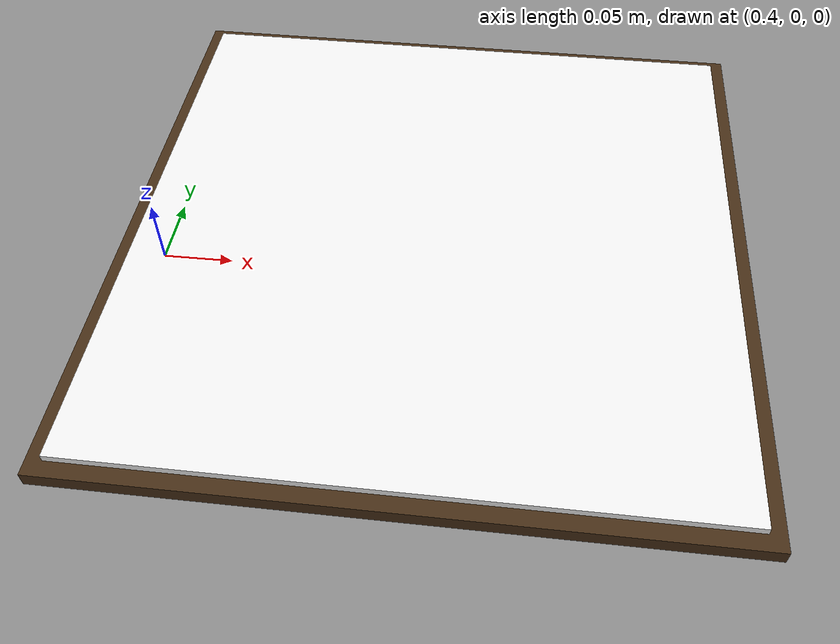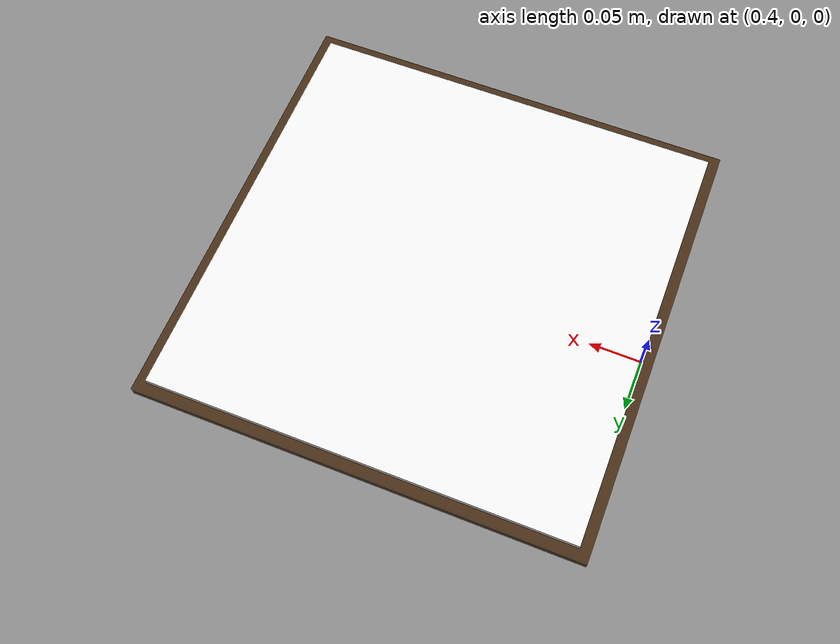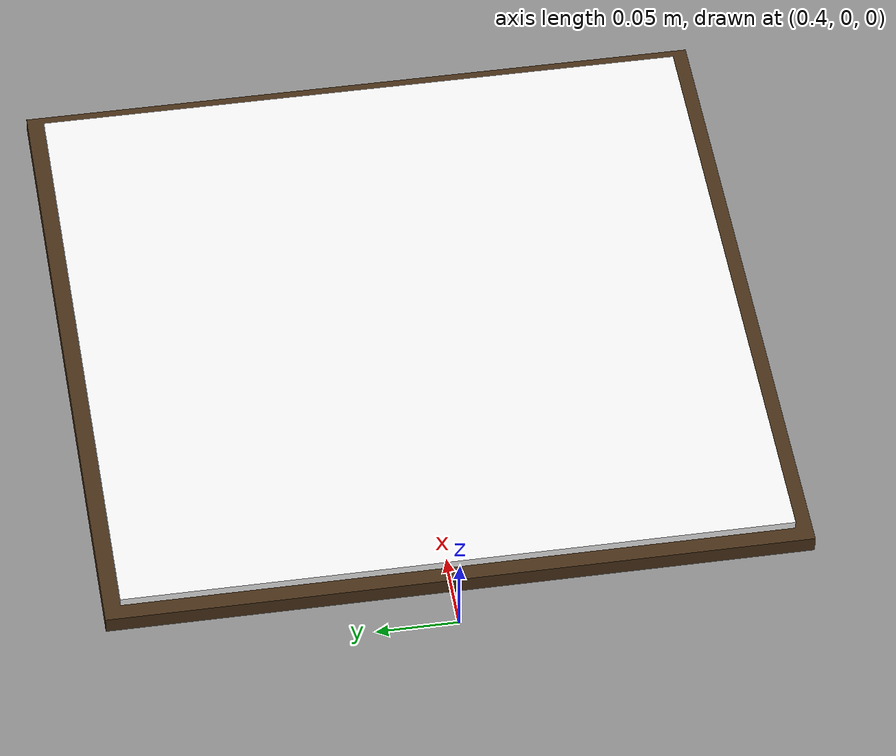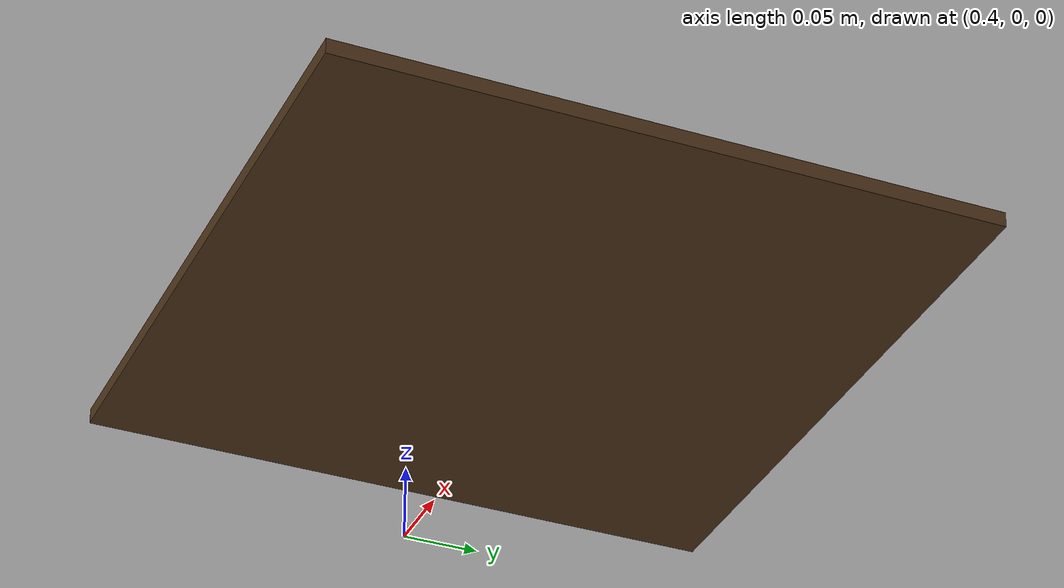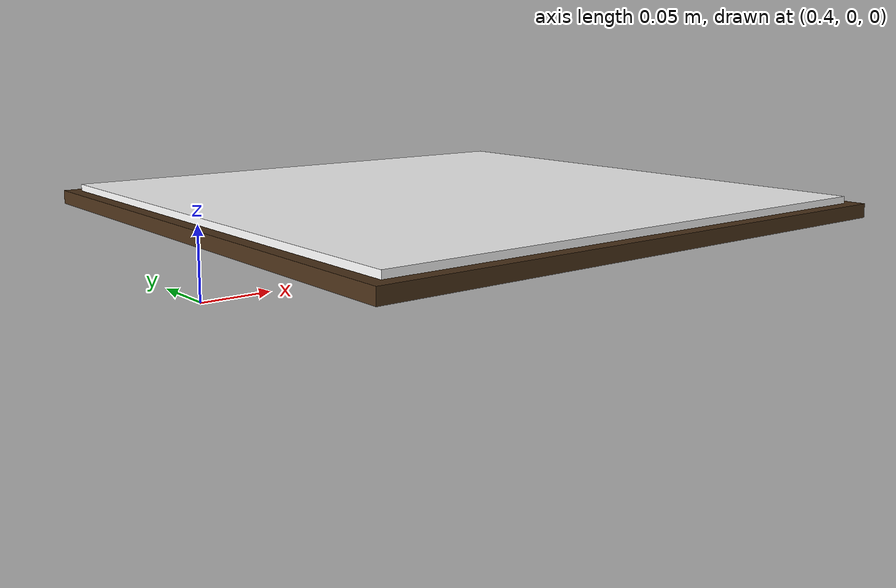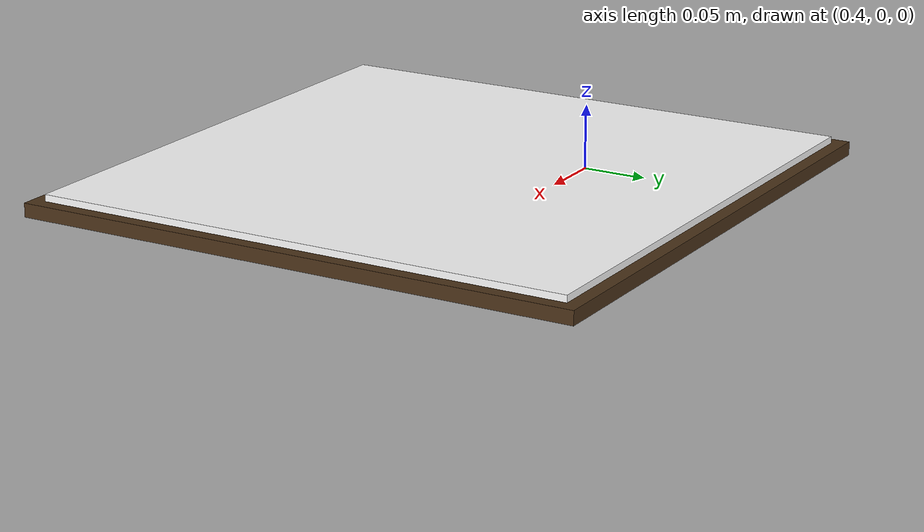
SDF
<?xml version="1.0"?>
<sdf version="1.7">
  <model name="drawing_canvas">
    <static>true</static>
    <pose>0.6 0 0.05 0 0 0</pose>  <!-- Elevated canvas for realistic pen length -->

    <!-- Canvas surface (white drawing board) -->
    <link name="canvas_surface">
      <collision name="canvas_collision">
        <geometry>
          <box>
            <size>0.4 0.4 0.01</size>
          </box>
        </geometry>
        <surface>
          <contact>
            <ode>
              <soft_cfm>0.0</soft_cfm>
              <soft_erp>0.2</soft_erp>
              <kp>1000000.0</kp>
              <kd>100.0</kd>
              <max_vel>0.01</max_vel>
              <min_depth>0.001</min_depth>
            </ode>
          </contact>
        </surface>
      </collision>

      <visual name="canvas_visual">
        <geometry>
          <box>
            <size>0.4 0.4 0.01</size>
          </box>
        </geometry>
        <material>
          <ambient>1.0 1.0 1.0 1.0</ambient>
          <diffuse>1.0 1.0 1.0 1.0</diffuse>
          <specular>0.1 0.1 0.1 1.0</specular>
          <emissive>0.0 0.0 0.0 0.0</emissive>
        </material>
      </visual>

      <inertial>
        <mass>1.0</mass>
        <inertia>
          <ixx>0.01</ixx>
          <ixy>0.0</ixy>
          <ixz>0.0</ixz>
          <iyy>0.01</iyy>
          <iyz>0.0</iyz>
          <izz>0.01</izz>
        </inertia>
      </inertial>
    </link>

    <!-- Canvas frame (border) -->
    <link name="canvas_frame">
      <pose>0 0 -0.005 0 0 0</pose>
      <collision name="frame_collision">
        <geometry>
          <box>
            <size>0.42 0.42 0.01</size>
          </box>
        </geometry>
      </collision>

      <visual name="frame_visual">
        <geometry>
          <box>
            <size>0.42 0.42 0.01</size>
          </box>
        </geometry>
        <material>
          <ambient>0.3 0.2 0.1 1.0</ambient>
          <diffuse>0.3 0.2 0.1 1.0</diffuse>
          <specular>0.1 0.1 0.1 1.0</specular>
        </material>
      </visual>

      <inertial>
        <mass>0.5</mass>
        <inertia>
          <ixx>0.01</ixx>
          <ixy>0.0</ixy>
          <ixz>0.0</ixz>
          <iyy>0.01</iyy>
          <iyz>0.0</iyz>
          <izz>0.01</izz>
        </inertia>
      </inertial>
    </link>

    <!-- Fixed joint between frame and surface -->
    <joint name="frame_to_surface" type="fixed">
      <parent>canvas_frame</parent>
      <child>canvas_surface</child>
      <pose>0 0 0.005 0 0 0</pose>
    </joint>
  </model>
</sdf>
